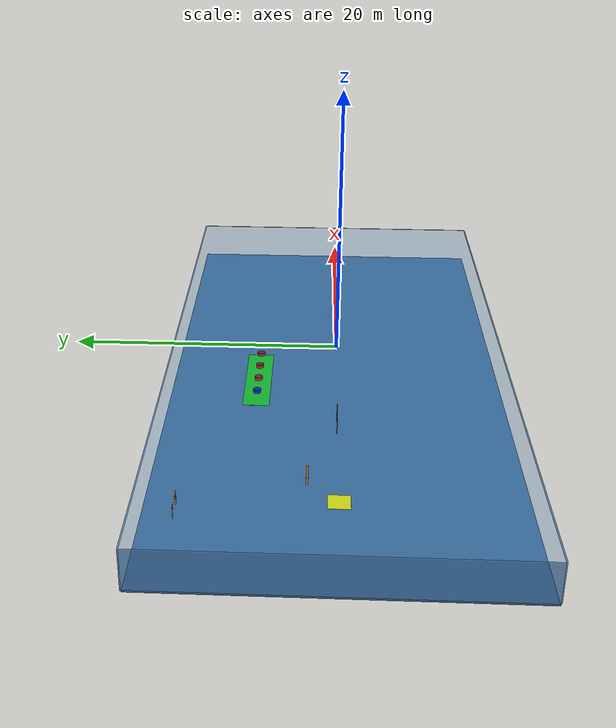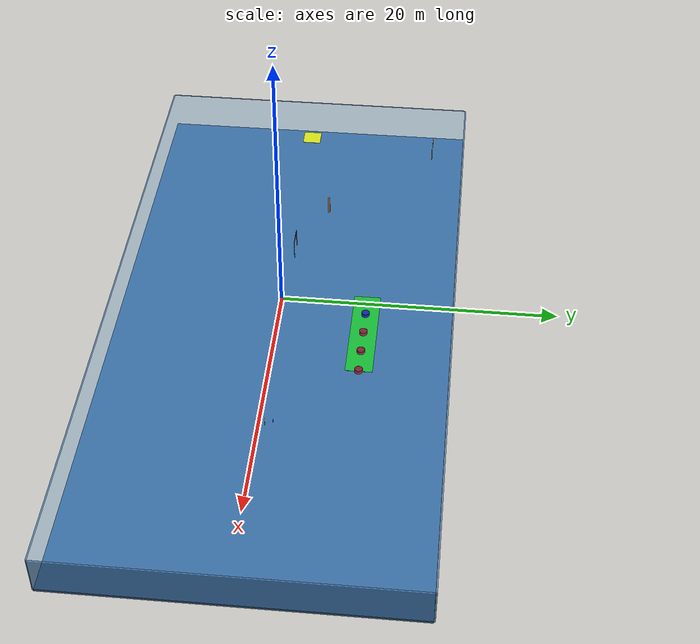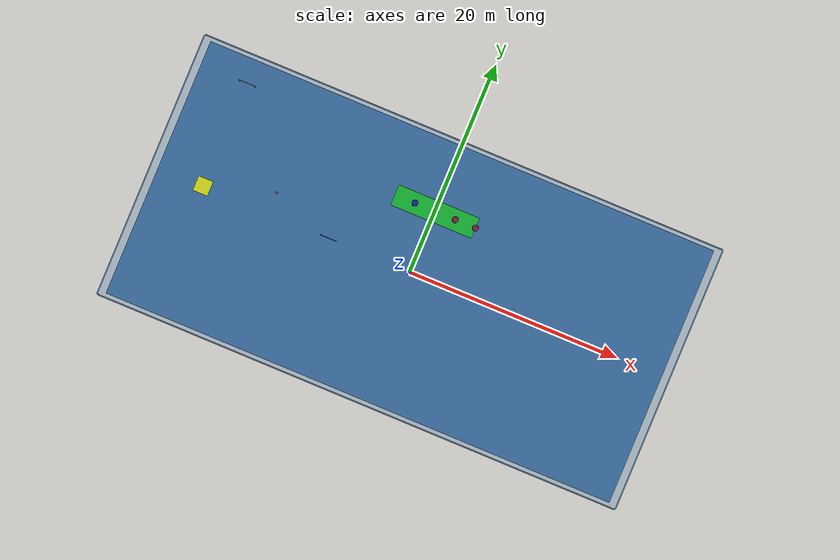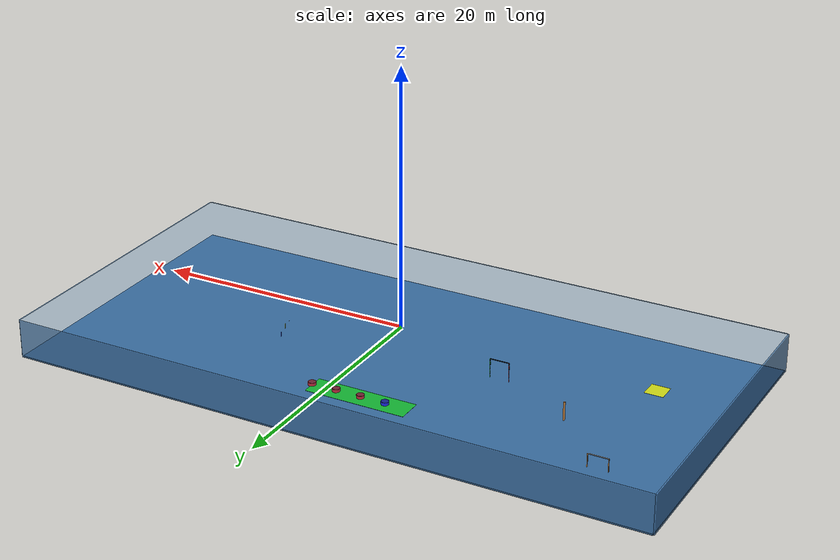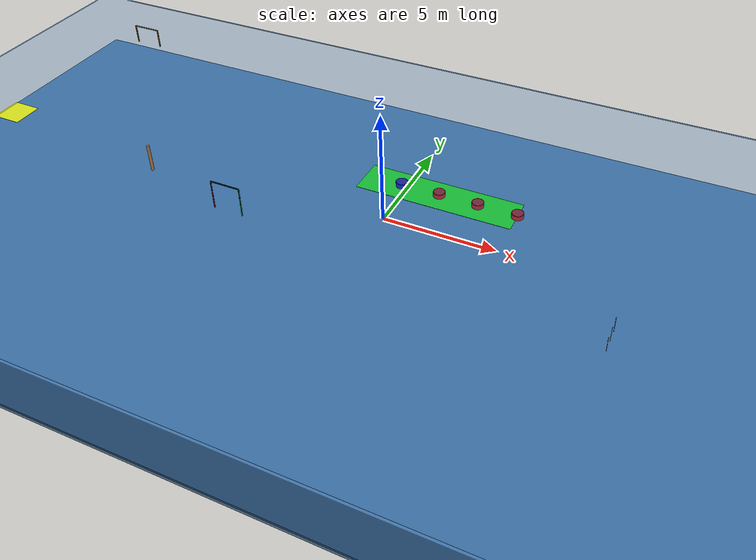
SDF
<sdf version="1.6">
 <world name="sauvc_pool">
  <scene><ambient>0.0 0.4 0.6</ambient><background>0.0 0.3 0.5</background></scene>
  <physics name="default" type="ode">
   <max_step_size>0.001</max_step_size>
   <real_time_factor>1.0</real_time_factor>
   <real_time_update_rate>1000</real_time_update_rate>
  </physics>
  <plugin name="ignition::gazebo::systems::Physics" filename="ignition-gazebo-physics-system"/>
  <plugin name="ignition::gazebo::systems::UserCommands" filename="ignition-gazebo-user-commands-system"/>
  <plugin name="ignition::gazebo::systems::SceneBroadcaster" filename="ignition-gazebo-scene-broadcaster-system"/>
  <plugin filename="ignition-gazebo-sensors-system" name="ignition::gazebo::systems::Sensors">
   <render_engine>ogre2</render_engine>
  </plugin>
  <plugin filename="ignition-gazebo-contact-system" name="ignition::gazebo::systems::Contact"/>
  <plugin filename="ignition-gazebo-buoyancy-system" name="ignition::gazebo::systems::Buoyancy">
   <uniform_fluid_density>1000</uniform_fluid_density>
  </plugin>
  <light type="directional" name="sun">
   <pose>0 0 10 0 0 0</pose>
   <diffuse>0.8 0.8 0.8 1</diffuse>
   <specular>0.2 0.2 0.2 1</specular>
   <attenuation>
    <range>1000</range>
    <constant>0.9</constant>
    <linear>0.01</linear>
    <quadratic>0.001</quadratic>
   </attenuation>
   <direction>-0.5 0.1 -0.9</direction>
  </light>
  <light type="point" name="underwater_light_1">
   <pose>0 0 -1 0 0 0</pose>
   <diffuse>0.4 0.5 0.6 1</diffuse>
   <specular>0.1 0.1 0.1 1</specular>
   <attenuation>
    <range>20</range>
    <constant>0.5</constant>
    <linear>0.01</linear>
    <quadratic>0.001</quadratic>
   </attenuation>
  </light>
  <model name="sky_cam">
   <static>true</static>
   <link name="camera_link">
    <pose>0 0 10 1.57 1.57 0</pose>
    <sensor name="sky_cam" type="camera">
     <camera>
      <horizontal_fov>1.047</horizontal_fov>
      <image><width>1024</width><height>768</height></image>
      <clip><near>0.1</near><far>100</far></clip>
     </camera>
     <always_on>1</always_on>
     <update_rate>1</update_rate>
     <visualize>true</visualize>
     <topic>sky_cam</topic>
    </sensor>
   </link>
  </model>
  <model name="pool">
   <static>true</static>
   <link name="pool_link">
    <collision name="floor_collision">
     <pose>0 0 -3.0 0 0 0</pose>
     <geometry><box><size>50 25 0.1</size></box></geometry>
    </collision>
    <visual name="floor_visual">
     <pose>0 0 -3.0 0 0 0</pose>
     <geometry><box><size>50 25 0.1</size></box></geometry>
     <material>
      <ambient>0.2 0.4 0.6 1</ambient>
      <diffuse>0.2 0.4 0.6 1</diffuse>
      <specular>0.1 0.1 0.1 1</specular>
     </material>
    </visual>
    <collision name="wall1_collision">
     <pose>0 12.55 -1.5 0 0 0</pose>
     <geometry><box><size>50 0.1 3</size></box></geometry>
    </collision>
    <visual name="wall1_visual">
     <pose>0 12.55 -1.5 0 0 0</pose>
     <geometry><box><size>50 0.1 3</size></box></geometry>
     <material>
      <ambient>0.3 0.5 0.7 0.8</ambient>
      <diffuse>0.3 0.5 0.7 0.8</diffuse>
      <specular>0.2 0.2 0.2 1</specular>
     </material>
    </visual>
    <collision name="wall2_collision">
     <pose>0 -12.55 -1.5 0 0 0</pose>
     <geometry><box><size>50 0.1 3</size></box></geometry>
    </collision>
    <visual name="wall2_visual">
     <pose>0 -12.55 -1.5 0 0 0</pose>
     <geometry><box><size>50 0.1 3</size></box></geometry>
     <material>
      <ambient>0.3 0.5 0.7 0.8</ambient>
      <diffuse>0.3 0.5 0.7 0.8</diffuse>
      <specular>0.2 0.2 0.2 1</specular>
     </material>
    </visual>
    <collision name="wall3_collision">
     <pose>25.05 0 -1.5 0 0 0</pose>
     <geometry><box><size>0.1 25 3</size></box></geometry>
    </collision>
    <visual name="wall3_visual">
     <pose>25.05 0 -1.5 0 0 0</pose>
     <geometry><box><size>0.1 25 3</size></box></geometry>
     <material>
      <ambient>0.3 0.5 0.7 0.8</ambient>
      <diffuse>0.3 0.5 0.7 0.8</diffuse>
      <specular>0.2 0.2 0.2 1</specular>
     </material>
    </visual>
    <collision name="wall4_collision">
     <pose>-25.05 0 -1.5 0 0 0</pose>
     <geometry><box><size>0.1 25 3</size></box></geometry>
    </collision>
    <visual name="wall4_visual">
     <pose>-25.05 0 -1.5 0 0 0</pose>
     <geometry><box><size>0.1 25 3</size></box></geometry>
     <material>
      <ambient>0.3 0.5 0.7 0.8</ambient>
      <diffuse>0.3 0.5 0.7 0.8</diffuse>
      <specular>0.2 0.2 0.2 1</specular>
     </material>
    </visual>
    <visual name="water_surface">
     <geometry><box><size>50 25 0.01</size></box></geometry>
     <material>
      <ambient>0.3 0.5 0.7 0.3</ambient>
      <diffuse>0.3 0.5 0.7 0.3</diffuse>
      <specular>0.5 0.5 0.5 0.3</specular>
     </material>
    </visual>
   </link>
  </model>
  <model name="starting_zone">
   <static>true</static>
   <pose>-20 0 0.01 0 0 0</pose>
   <link name="starting_zone_link">
    <visual name="starting_zone_visual">
     <geometry><box><size>1.4 1.4 0.02</size></box></geometry>
     <material>
      <ambient>1 1 0 0.8</ambient>
      <diffuse>1 1 0 0.8</diffuse>
      <specular>0.1 0.1 0.1 1</specular>
     </material>
    </visual>
   </link>
  </model>
  <model name="navigation_gate">
   <static>true</static>
   <pose>-8 0 -1.5 0 0 0</pose>
   <link name="gate_link">
    <collision name="left_post_collision">
     <pose>-0.75 0 0 0 0 0</pose>
     <geometry><box><size>0.04 0.04 1.5</size></box></geometry>
    </collision>
    <visual name="left_stripe_1">
     <pose>-0.75 0 -0.65 0 0 0</pose>
     <geometry><box><size>0.04 0.04 0.20</size></box></geometry>
     <material><ambient>1 0 0 1</ambient><diffuse>1 0 0 1</diffuse><specular>0.1 0.1 0.1 1</specular></material>
    </visual>
    <visual name="left_stripe_2">
     <pose>-0.75 0 -0.45 0 0 0</pose>
     <geometry><box><size>0.04 0.04 0.10</size></box></geometry>
     <material><ambient>0 0 0 1</ambient><diffuse>0 0 0 1</diffuse><specular>0.1 0.1 0.1 1</specular></material>
    </visual>
    <visual name="left_stripe_3">
     <pose>-0.75 0 -0.30 0 0 0</pose>
     <geometry><box><size>0.04 0.04 0.20</size></box></geometry>
     <material><ambient>1 0 0 1</ambient><diffuse>1 0 0 1</diffuse><specular>0.1 0.1 0.1 1</specular></material>
    </visual>
    <visual name="left_stripe_4">
     <pose>-0.75 0 -0.10 0 0 0</pose>
     <geometry><box><size>0.04 0.04 0.10</size></box></geometry>
     <material><ambient>0 0 0 1</ambient><diffuse>0 0 0 1</diffuse><specular>0.1 0.1 0.1 1</specular></material>
    </visual>
    <visual name="left_stripe_5">
     <pose>-0.75 0 0.05 0 0 0</pose>
     <geometry><box><size>0.04 0.04 0.20</size></box></geometry>
     <material><ambient>1 0 0 1</ambient><diffuse>1 0 0 1</diffuse><specular>0.1 0.1 0.1 1</specular></material>
    </visual>
    <visual name="left_stripe_6">
     <pose>-0.75 0 0.25 0 0 0</pose>
     <geometry><box><size>0.04 0.04 0.10</size></box></geometry>
     <material><ambient>0 0 0 1</ambient><diffuse>0 0 0 1</diffuse><specular>0.1 0.1 0.1 1</specular></material>
    </visual>
    <visual name="left_stripe_7">
     <pose>-0.75 0 0.40 0 0 0</pose>
     <geometry><box><size>0.04 0.04 0.20</size></box></geometry>
     <material><ambient>1 0 0 1</ambient><diffuse>1 0 0 1</diffuse><specular>0.1 0.1 0.1 1</specular></material>
    </visual>
    <visual name="left_stripe_8">
     <pose>-0.75 0 0.60 0 0 0</pose>
     <geometry><box><size>0.04 0.04 0.10</size></box></geometry>
     <material><ambient>0 0 0 1</ambient><diffuse>0 0 0 1</diffuse><specular>0.1 0.1 0.1 1</specular></material>
    </visual>
    <visual name="left_stripe_9">
     <pose>-0.75 0 0.70 0 0 0</pose>
     <geometry><box><size>0.04 0.04 0.10</size></box></geometry>
     <material><ambient>1 0 0 1</ambient><diffuse>1 0 0 1</diffuse><specular>0.1 0.1 0.1 1</specular></material>
    </visual>
    <collision name="right_post_collision">
     <pose>0.75 0 0 0 0 0</pose>
     <geometry><box><size>0.04 0.04 1.5</size></box></geometry>
    </collision>
    <visual name="right_stripe_1">
     <pose>0.75 0 -0.65 0 0 0</pose>
     <geometry><box><size>0.04 0.04 0.20</size></box></geometry>
     <material><ambient>0 1 0 1</ambient><diffuse>0 1 0 1</diffuse><specular>0.1 0.1 0.1 1</specular></material>
    </visual>
    <visual name="right_stripe_2">
     <pose>0.75 0 -0.45 0 0 0</pose>
     <geometry><box><size>0.04 0.04 0.10</size></box></geometry>
     <material><ambient>0 0 0 1</ambient><diffuse>0 0 0 1</diffuse><specular>0.1 0.1 0.1 1</specular></material>
    </visual>
    <visual name="right_stripe_3">
     <pose>0.75 0 -0.30 0 0 0</pose>
     <geometry><box><size>0.04 0.04 0.20</size></box></geometry>
     <material><ambient>0 1 0 1</ambient><diffuse>0 1 0 1</diffuse><specular>0.1 0.1 0.1 1</specular></material>
    </visual>
    <visual name="right_stripe_4">
     <pose>0.75 0 -0.10 0 0 0</pose>
     <geometry><box><size>0.04 0.04 0.10</size></box></geometry>
     <material><ambient>0 0 0 1</ambient><diffuse>0 0 0 1</diffuse><specular>0.1 0.1 0.1 1</specular></material>
    </visual>
    <visual name="right_stripe_5">
     <pose>0.75 0 0.05 0 0 0</pose>
     <geometry><box><size>0.04 0.04 0.20</size></box></geometry>
     <material><ambient>0 1 0 1</ambient><diffuse>0 1 0 1</diffuse><specular>0.1 0.1 0.1 1</specular></material>
    </visual>
    <visual name="right_stripe_6">
     <pose>0.75 0 0.25 0 0 0</pose>
     <geometry><box><size>0.04 0.04 0.10</size></box></geometry>
     <material><ambient>0 0 0 1</ambient><diffuse>0 0 0 1</diffuse><specular>0.1 0.1 0.1 1</specular></material>
    </visual>
    <visual name="right_stripe_7">
     <pose>0.75 0 0.40 0 0 0</pose>
     <geometry><box><size>0.04 0.04 0.20</size></box></geometry>
     <material><ambient>0 1 0 1</ambient><diffuse>0 1 0 1</diffuse><specular>0.1 0.1 0.1 1</specular></material>
    </visual>
    <visual name="right_stripe_8">
     <pose>0.75 0 0.60 0 0 0</pose>
     <geometry><box><size>0.04 0.04 0.10</size></box></geometry>
     <material><ambient>0 0 0 1</ambient><diffuse>0 0 0 1</diffuse><specular>0.1 0.1 0.1 1</specular></material>
    </visual>
    <visual name="right_stripe_9">
     <pose>0.75 0 0.70 0 0 0</pose>
     <geometry><box><size>0.04 0.04 0.10</size></box></geometry>
     <material><ambient>0 1 0 1</ambient><diffuse>0 1 0 1</diffuse><specular>0.1 0.1 0.1 1</specular></material>
    </visual>
    <collision name="top_bar_collision">
     <pose>0 0 0.75 0 0 0</pose>
     <geometry><box><size>1.5 0.04 0.04</size></box></geometry>
    </collision>
    <visual name="top_bar_visual">
     <pose>0 0 0.75 0 0 0</pose>
     <geometry><box><size>1.5 0.04 0.04</size></box></geometry>
     <material><ambient>0 0 0 1</ambient><diffuse>0 0 0 1</diffuse><specular>0.2 0.2 0.2 1</specular></material>
    </visual>
   </link>
  </model>
  <model name="orange_flare">
   <static>true</static>
   <pose>-14 2 -2.25 0 0 0</pose>
   <link name="flare_link">
    <collision name="flare_collision">
     <geometry><cylinder><radius>0.075</radius><length>1.5</length></cylinder></geometry>
    </collision>
    <visual name="flare_visual">
     <geometry><cylinder><radius>0.075</radius><length>1.5</length></cylinder></geometry>
     <material>
      <ambient>1 0.5 0 1</ambient>
      <diffuse>1 0.5 0 1</diffuse>
      <specular>0.2 0.2 0.2 1</specular>
     </material>
    </visual>
   </link>
  </model>
  <model name="target_zone_mat">
   <static>true</static>
   <pose>0 6 -2.95 0 0 0</pose>
   <link name="mat_link">
    <visual name="mat_visual">
     <geometry><box><size>8 2 0.02</size></box></geometry>
     <material>
      <ambient>0 0.8 0 1</ambient>
      <diffuse>0 0.8 0 1</diffuse>
      <specular>0.1 0.1 0.1 1</specular>
     </material>
    </visual>
   </link>
  </model>
  <model name="blue_drum">
   <static>true</static>
   <pose>-2 6 -2.85 0 0 0</pose>
   <link name="drum_link">
    <collision name="drum_collision">
     <geometry><cylinder><radius>0.3</radius><length>0.3</length></cylinder></geometry>
    </collision>
    <visual name="drum_visual">
     <geometry><cylinder><radius>0.3</radius><length>0.3</length></cylinder></geometry>
     <material><ambient>0 0 1 1</ambient><diffuse>0 0 1 1</diffuse><specular>0.2 0.2 0.2 1</specular></material>
    </visual>
    <visual name="drum_opening">
     <pose>0 0 0.15 0 0 0</pose>
     <geometry><cylinder><radius>0.28</radius><length>0.02</length></cylinder></geometry>
     <material>
      <ambient>0 0 0.5 1</ambient>
      <diffuse>0 0 0.5 1</diffuse>
      <specular>0.1 0.1 0.1 1</specular>
     </material>
    </visual>
   </link>
  </model>
  <model name="red_drum_1">
   <static>true</static>
   <pose>0 6 -2.85 0 0 0</pose>
   <link name="drum_link">
    <collision name="drum_collision">
     <geometry><cylinder><radius>0.3</radius><length>0.3</length></cylinder></geometry>
    </collision>
    <visual name="drum_visual">
     <geometry><cylinder><radius>0.3</radius><length>0.3</length></cylinder></geometry>
     <material><ambient>1 0 0 1</ambient><diffuse>1 0 0 1</diffuse><specular>0.2 0.2 0.2 1</specular></material>
    </visual>
    <visual name="drum_opening">
     <pose>0 0 0.15 0 0 0</pose>
     <geometry><cylinder><radius>0.28</radius><length>0.02</length></cylinder></geometry>
     <material>
      <ambient>0.5 0 0 1</ambient>
      <diffuse>0.5 0 0 1</diffuse>
      <specular>0.1 0.1 0.1 1</specular>
     </material>
    </visual>
   </link>
  </model>
  <model name="red_drum_2">
   <static>true</static>
   <pose>2 6 -2.85 0 0 0</pose>
   <link name="drum_link">
    <collision name="drum_collision">
     <geometry><cylinder><radius>0.3</radius><length>0.3</length></cylinder></geometry>
    </collision>
    <visual name="drum_visual">
     <geometry><cylinder><radius>0.3</radius><length>0.3</length></cylinder></geometry>
     <material><ambient>1 0 0 1</ambient><diffuse>1 0 0 1</diffuse><specular>0.2 0.2 0.2 1</specular></material>
    </visual>
    <visual name="drum_opening">
     <pose>0 0 0.15 0 0 0</pose>
     <geometry><cylinder><radius>0.28</radius><length>0.02</length></cylinder></geometry>
     <material>
      <ambient>0.5 0 0 1</ambient>
      <diffuse>0.5 0 0 1</diffuse>
      <specular>0.1 0.1 0.1 1</specular>
     </material>
    </visual>
   </link>
  </model>
  <model name="red_drum_3">
   <static>true</static>
   <pose>4 6 -2.85 0 0 0</pose>
   <link name="drum_link">
    <collision name="drum_collision">
     <geometry><cylinder><radius>0.3</radius><length>0.3</length></cylinder></geometry>
    </collision>
    <visual name="drum_visual">
     <geometry><cylinder><radius>0.3</radius><length>0.3</length></cylinder></geometry>
     <material><ambient>1 0 0 1</ambient><diffuse>1 0 0 1</diffuse><specular>0.2 0.2 0.2 1</specular></material>
    </visual>
    <visual name="drum_opening">
     <pose>0 0 0.15 0 0 0</pose>
     <geometry><cylinder><radius>0.28</radius><length>0.02</length></cylinder></geometry>
     <material>
      <ambient>0.5 0 0 1</ambient>
      <diffuse>0.5 0 0 1</diffuse>
      <specular>0.1 0.1 0.1 1</specular>
     </material>
    </visual>
   </link>
  </model>
  <model name="red_flare">
   <static>true</static>
   <pose>10 -0.6 -2.6 0 0 0</pose>
   <link name="flare_link">
    <collision name="flare_collision">
     <geometry><cylinder><radius>0.008</radius><length>0.8</length></cylinder></geometry>
    </collision>
    <visual name="flare_visual">
     <geometry><cylinder><radius>0.008</radius><length>0.8</length></cylinder></geometry>
     <material><ambient>1 0 0 1</ambient><diffuse>1 0 0 1</diffuse><specular>0.3 0.3 0.3 1</specular></material>
    </visual>
   </link>
  </model>
  <model name="yellow_flare">
   <static>true</static>
   <pose>10 0 -2.6 0 0 0</pose>
   <link name="flare_link">
    <collision name="flare_collision">
     <geometry><cylinder><radius>0.008</radius><length>0.8</length></cylinder></geometry>
    </collision>
    <visual name="flare_visual">
     <geometry><cylinder><radius>0.008</radius><length>0.8</length></cylinder></geometry>
     <material><ambient>1 1 0 1</ambient><diffuse>1 1 0 1</diffuse><specular>0.3 0.3 0.3 1</specular></material>
    </visual>
   </link>
  </model>
  <model name="blue_flare">
   <static>true</static>
   <pose>10 0.6 -2.6 0 0 0</pose>
   <link name="flare_link">
    <collision name="flare_collision">
     <geometry><cylinder><radius>0.008</radius><length>0.8</length></cylinder></geometry>
    </collision>
    <visual name="flare_visual">
     <geometry><cylinder><radius>0.008</radius><length>0.8</length></cylinder></geometry>
     <material><ambient>0 0 1 1</ambient><diffuse>0 0 1 1</diffuse><specular>0.3 0.3 0.3 1</specular></material>
    </visual>
   </link>
  </model>
  <model name="golf_ball_red">
   <static>true</static>
   <pose>10 -0.6 -2.16 0 0 0</pose>
   <link name="ball_link">
    <collision name="ball_collision"><geometry><sphere><radius>0.021</radius></sphere></geometry></collision>
    <visual name="ball_visual">
     <geometry><sphere><radius>0.021</radius></sphere></geometry>
     <material><ambient>1 1 1 1</ambient><diffuse>1 1 1 1</diffuse><specular>0.5 0.5 0.5 1</specular></material>
    </visual>
   </link>
  </model>
  <model name="golf_ball_yellow">
   <static>true</static>
   <pose>10 0 -2.16 0 0 0</pose>
   <link name="ball_link">
    <collision name="ball_collision"><geometry><sphere><radius>0.021</radius></sphere></geometry></collision>
    <visual name="ball_visual">
     <geometry><sphere><radius>0.021</radius></sphere></geometry>
     <material><ambient>1 1 1 1</ambient><diffuse>1 1 1 1</diffuse><specular>0.5 0.5 0.5 1</specular></material>
    </visual>
   </link>
  </model>
  <model name="golf_ball_blue">
   <static>true</static>
   <pose>10 0.6 -2.16 0 0 0</pose>
   <link name="ball_link">
    <collision name="ball_collision"><geometry><sphere><radius>0.021</radius></sphere></geometry></collision>
    <visual name="ball_visual">
     <geometry><sphere><radius>0.021</radius></sphere></geometry>
     <material><ambient>1 1 1 1</ambient><diffuse>1 1 1 1</diffuse><specular>0.5 0.5 0.5 1</specular></material>
    </visual>
   </link>
  </model>
  <model name="qualification_gate">
   <static>true</static>
   <pose>-20 10 -0.5 0 0 0</pose>
   <link name="gate_link">
    <collision name="left_post_collision">
     <pose>-0.75 0 0 0 0 0</pose>
     <geometry><box><size>0.05 0.05 1.0</size></box></geometry>
    </collision>
    <visual name="left_post_visual">
     <pose>-0.75 0 0 0 0 0</pose>
     <geometry><box><size>0.05 0.05 1.0</size></box></geometry>
     <material>
      <ambient>1 0.5 0 1</ambient>
      <diffuse>1 0.5 0 1</diffuse>
      <specular>0.1 0.1 0.1 1</specular>
     </material>
    </visual>
    <collision name="right_post_collision">
     <pose>0.75 0 0 0 0 0</pose>
     <geometry><box><size>0.05 0.05 1.0</size></box></geometry>
    </collision>
    <visual name="right_post_visual">
     <pose>0.75 0 0 0 0 0</pose>
     <geometry><box><size>0.05 0.05 1.0</size></box></geometry>
     <material>
      <ambient>1 0.5 0 1</ambient>
      <diffuse>1 0.5 0 1</diffuse>
      <specular>0.1 0.1 0.1 1</specular>
     </material>
    </visual>
    <collision name="top_bar_collision">
     <pose>0 0 0.5 0 0 0</pose>
     <geometry><box><size>1.5 0.05 0.05</size></box></geometry>
    </collision>
    <visual name="top_bar_visual">
     <pose>0 0 0.5 0 0 0</pose>
     <geometry><box><size>1.5 0.05 0.05</size></box></geometry>
     <material>
      <ambient>0.8 0.8 0.8 1</ambient>
      <diffuse>0.8 0.8 0.8 1</diffuse>
      <specular>0.2 0.2 0.2 1</specular>
     </material>
    </visual>
   </link>
  </model>
 </world>
</sdf>
